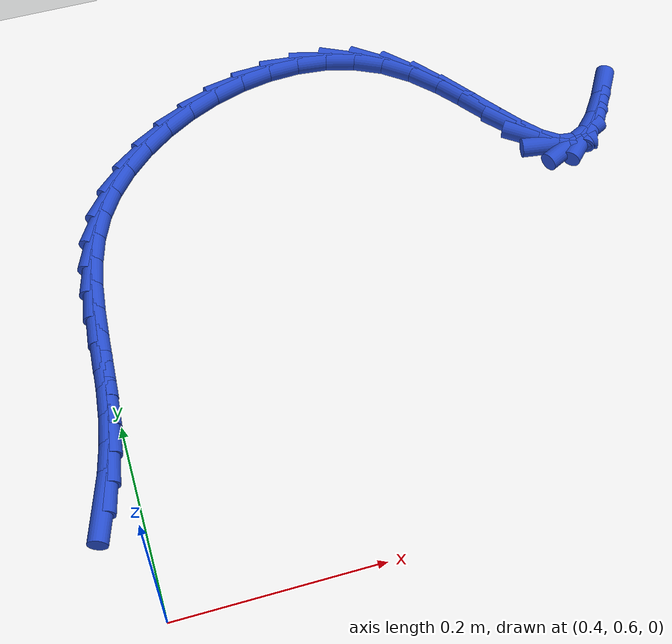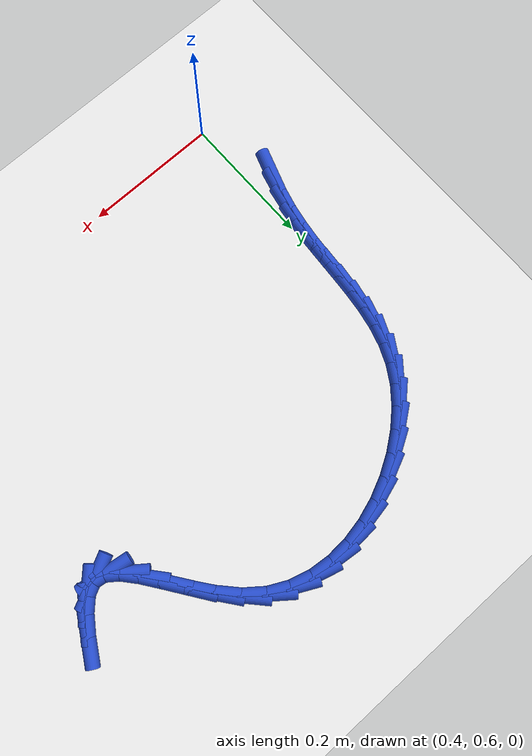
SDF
<sdf version="1.6">
 <world name="default">
  <model name="ground_plane">
   <static>1</static>
   <link name="link">
    <collision name="collision">
     <geometry><plane><normal>0 0 1</normal><size>100 100</size></plane></geometry>
     <surface><friction><ode><mu>100</mu><mu2>50</mu2></ode></friction></surface>
    </collision>
    <visual name="visual">
     <cast_shadows>0</cast_shadows>
     <geometry><plane><normal>0 0 1</normal><size>100 100</size></plane></geometry>
     <material>
      <script><uri>file://media/materials/scripts/gazebo.material</uri><name>Gazebo/WhiteGlow</name></script>
     </material>
    </visual>
   </link>
  </model>
  <model name="line">
   <link name="link_28">
    <pose>0.36902604573097597 0.7219168191069211 0.01 0 1.57 1.244764193914915</pose>
    <collision name="collision">
     <geometry><cylinder><radius>0.01</radius><length>0.08</length></cylinder></geometry>
    </collision>
    <visual name="visual">
     <material>
      <script><name>Gazebo/Blue</name><uri>file://media/materials/scripts/gazebo.material</uri></script>
     </material>
     <geometry><cylinder><radius>0.01</radius><length>0.08</length></cylinder></geometry>
    </visual>
   </link>
   <link name="link_29">
    <pose>0.3783888956829555 0.7496095726739407 0.01 0 1.57 1.3223368122751318</pose>
    <collision name="collision">
     <geometry><cylinder><radius>0.01</radius><length>0.08</length></cylinder></geometry>
    </collision>
    <visual name="visual">
     <material>
      <script><name>Gazebo/Blue</name><uri>file://media/materials/scripts/gazebo.material</uri></script>
     </material>
     <geometry><cylinder><radius>0.01</radius><length>0.08</length></cylinder></geometry>
    </visual>
   </link>
   <link name="link_30">
    <pose>0.38563838511574894 0.7781844349049406 0.01 0 1.57 1.3911572000497914</pose>
    <collision name="collision">
     <geometry><cylinder><radius>0.01</radius><length>0.08</length></cylinder></geometry>
    </collision>
    <visual name="visual">
     <material>
      <script><name>Gazebo/Blue</name><uri>file://media/materials/scripts/gazebo.material</uri></script>
     </material>
     <geometry><cylinder><radius>0.01</radius><length>0.08</length></cylinder></geometry>
    </visual>
   </link>
   <link name="link_31">
    <pose>0.3909557389757474 0.8074655449772111 0.01 0 1.57 1.4499399673393059</pose>
    <collision name="collision">
     <geometry><cylinder><radius>0.01</radius><length>0.08</length></cylinder></geometry>
    </collision>
    <visual name="visual">
     <material>
      <script><name>Gazebo/Blue</name><uri>file://media/materials/scripts/gazebo.material</uri></script>
     </material>
     <geometry><cylinder><radius>0.01</radius><length>0.08</length></cylinder></geometry>
    </visual>
   </link>
   <link name="link_32">
    <pose>0.3945729398656215 0.8372494345035162 0.01 0 1.57 1.4906707065102616</pose>
    <collision name="collision">
     <geometry><cylinder><radius>0.01</radius><length>0.08</length></cylinder></geometry>
    </collision>
    <visual name="visual">
     <material>
      <script><name>Gazebo/Blue</name><uri>file://media/materials/scripts/gazebo.material</uri></script>
     </material>
     <geometry><cylinder><radius>0.01</radius><length>0.08</length></cylinder></geometry>
    </visual>
   </link>
   <link name="link_33">
    <pose>0.396988040617587 0.8673263327755523 0.01 0 1.57 1.5049395389462195</pose>
    <collision name="collision">
     <geometry><cylinder><radius>0.01</radius><length>0.08</length></cylinder></geometry>
    </collision>
    <visual name="visual">
     <material>
      <script><name>Gazebo/Blue</name><uri>file://media/materials/scripts/gazebo.material</uri></script>
     </material>
     <geometry><cylinder><radius>0.01</radius><length>0.08</length></cylinder></geometry>
    </visual>
   </link>
   <link name="link_34">
    <pose>0.39897673311417453 0.8974798927369627 0.01 0 1.57 1.492624940425134</pose>
    <collision name="collision">
     <geometry><cylinder><radius>0.01</radius><length>0.08</length></cylinder></geometry>
    </collision>
    <visual name="visual">
     <material>
      <script><name>Gazebo/Blue</name><uri>file://media/materials/scripts/gazebo.material</uri></script>
     </material>
     <geometry><cylinder><radius>0.01</radius><length>0.08</length></cylinder></geometry>
    </visual>
   </link>
   <link name="link_35">
    <pose>0.40132772594029864 0.927493459008894 0.01 0 1.57 1.4532568165698665</pose>
    <collision name="collision">
     <geometry><cylinder><radius>0.01</radius><length>0.08</length></cylinder></geometry>
    </collision>
    <visual name="visual">
     <material>
      <script><name>Gazebo/Blue</name><uri>file://media/materials/scripts/gazebo.material</uri></script>
     </material>
     <geometry><cylinder><radius>0.01</radius><length>0.08</length></cylinder></geometry>
    </visual>
   </link>
   <link name="link_36">
    <pose>0.40482972768087394 0.9571503762124933 0.01 0 1.57 1.3858289965185158</pose>
    <collision name="collision">
     <geometry><cylinder><radius>0.01</radius><length>0.08</length></cylinder></geometry>
    </collision>
    <visual name="visual">
     <material>
      <script><name>Gazebo/Blue</name><uri>file://media/materials/scripts/gazebo.material</uri></script>
     </material>
     <geometry><cylinder><radius>0.01</radius><length>0.08</length></cylinder></geometry>
    </visual>
   </link>
   <link name="link_37">
    <pose>0.4102714469208147 0.9862339889689059 0.01 0 1.57 1.289680802735764</pose>
    <collision name="collision">
     <geometry><cylinder><radius>0.01</radius><length>0.08</length></cylinder></geometry>
    </collision>
    <visual name="visual">
     <material>
      <script><name>Gazebo/Blue</name><uri>file://media/materials/scripts/gazebo.material</uri></script>
     </material>
     <geometry><cylinder><radius>0.01</radius><length>0.08</length></cylinder></geometry>
    </visual>
   </link>
   <link name="link_38">
    <pose>0.4184415922450355 1.014527641899279 0.01 0 1.57 1.166126387622552</pose>
    <collision name="collision">
     <geometry><cylinder><radius>0.01</radius><length>0.08</length></cylinder></geometry>
    </collision>
    <visual name="visual">
     <material>
      <script><name>Gazebo/Blue</name><uri>file://media/materials/scripts/gazebo.material</uri></script>
     </material>
     <geometry><cylinder><radius>0.01</radius><length>0.08</length></cylinder></geometry>
    </visual>
   </link>
   <link name="link_39">
    <pose>0.43012887223845064 1.0418146796247583 0.01 0 1.57 1.021718159743225</pose>
    <collision name="collision">
     <geometry><cylinder><radius>0.01</radius><length>0.08</length></cylinder></geometry>
    </collision>
    <visual name="visual">
     <material>
      <script><name>Gazebo/Blue</name><uri>file://media/materials/scripts/gazebo.material</uri></script>
     </material>
     <geometry><cylinder><radius>0.01</radius><length>0.08</length></cylinder></geometry>
    </visual>
   </link>
   <link name="link_40">
    <pose>0.4460710485726541 1.0678709024240025 0.01 0 1.57 0.8816059710161478</pose>
    <collision name="collision">
     <geometry><cylinder><radius>0.01</radius><length>0.08</length></cylinder></geometry>
    </collision>
    <visual name="visual">
     <material>
      <script><name>Gazebo/Blue</name><uri>file://media/materials/scripts/gazebo.material</uri></script>
     </material>
     <geometry><cylinder><radius>0.01</radius><length>0.08</length></cylinder></geometry>
    </visual>
   </link>
   <link name="link_41">
    <pose>0.4662495672594686 1.0923601135184435 0.01 0 1.57 0.7569735497013308</pose>
    <collision name="collision">
     <geometry><cylinder><radius>0.01</radius><length>0.08</length></cylinder></geometry>
    </collision>
    <visual name="visual">
     <material>
      <script><name>Gazebo/Blue</name><uri>file://media/materials/scripts/gazebo.material</uri></script>
     </material>
     <geometry><cylinder><radius>0.01</radius><length>0.08</length></cylinder></geometry>
    </visual>
   </link>
   <link name="link_42">
    <pose>0.4900667150944571 1.114860352828109 0.01 0 1.57 0.6424183129022573</pose>
    <collision name="collision">
     <geometry><cylinder><radius>0.01</radius><length>0.08</length></cylinder></geometry>
    </collision>
    <visual name="visual">
     <material>
      <script><name>Gazebo/Blue</name><uri>file://media/materials/scripts/gazebo.material</uri></script>
     </material>
     <geometry><cylinder><radius>0.01</radius><length>0.08</length></cylinder></geometry>
    </visual>
   </link>
   <link name="link_43">
    <pose>0.5169100562298813 1.1349474801082984 0.01 0 1.57 0.5327345462630801</pose>
    <collision name="collision">
     <geometry><cylinder><radius>0.01</radius><length>0.08</length></cylinder></geometry>
    </collision>
    <visual name="visual">
     <material>
      <script><name>Gazebo/Blue</name><uri>file://media/materials/scripts/gazebo.material</uri></script>
     </material>
     <geometry><cylinder><radius>0.01</radius><length>0.08</length></cylinder></geometry>
    </visual>
   </link>
   <link name="link_44">
    <pose>0.5461671548180029 1.1521973551143123 0.01 0 1.57 0.4231803610204229</pose>
    <collision name="collision">
     <geometry><cylinder><radius>0.01</radius><length>0.08</length></cylinder></geometry>
    </collision>
    <visual name="visual">
     <material>
      <script><name>Gazebo/Blue</name><uri>file://media/materials/scripts/gazebo.material</uri></script>
     </material>
     <geometry><cylinder><radius>0.01</radius><length>0.08</length></cylinder></geometry>
    </visual>
   </link>
   <link name="link_45">
    <pose>0.5772255750110832 1.1661858376014507 0.01 0 1.57 0.30924750717978405</pose>
    <collision name="collision">
     <geometry><cylinder><radius>0.01</radius><length>0.08</length></cylinder></geometry>
    </collision>
    <visual name="visual">
     <material>
      <script><name>Gazebo/Blue</name><uri>file://media/materials/scripts/gazebo.material</uri></script>
     </material>
     <geometry><cylinder><radius>0.01</radius><length>0.08</length></cylinder></geometry>
    </visual>
   </link>
   <link name="link_46">
    <pose>0.6094728809613835 1.1764887873250123 0.01 0 1.57 0.18649029162062186</pose>
    <collision name="collision">
     <geometry><cylinder><radius>0.01</radius><length>0.08</length></cylinder></geometry>
    </collision>
    <visual name="visual">
     <material>
      <script><name>Gazebo/Blue</name><uri>file://media/materials/scripts/gazebo.material</uri></script>
     </material>
     <geometry><cylinder><radius>0.01</radius><length>0.08</length></cylinder></geometry>
    </visual>
   </link>
   <link name="link_47">
    <pose>0.6422966368211661 1.1826820640402986 0.01 0 1.57 0.050569120087990124</pose>
    <collision name="collision">
     <geometry><cylinder><radius>0.01</radius><length>0.08</length></cylinder></geometry>
    </collision>
    <visual name="visual">
     <material>
      <script><name>Gazebo/Blue</name><uri>file://media/materials/scripts/gazebo.material</uri></script>
     </material>
     <geometry><cylinder><radius>0.01</radius><length>0.08</length></cylinder></geometry>
    </visual>
   </link>
   <link name="link_48">
    <pose>0.6750844067426921 1.1843415275026088 0.01 0 1.57 -0.10227281391559402</pose>
    <collision name="collision">
     <geometry><cylinder><radius>0.01</radius><length>0.08</length></cylinder></geometry>
    </collision>
    <visual name="visual">
     <material>
      <script><name>Gazebo/Blue</name><uri>file://media/materials/scripts/gazebo.material</uri></script>
     </material>
     <geometry><cylinder><radius>0.01</radius><length>0.08</length></cylinder></geometry>
    </visual>
   </link>
   <link name="link_49">
    <pose>0.7072237548782232 1.1810430374672423 0.01 0 1.57 -0.2740476525816257</pose>
    <collision name="collision">
     <geometry><cylinder><radius>0.01</radius><length>0.08</length></cylinder></geometry>
    </collision>
    <visual name="visual">
     <material>
      <script><name>Gazebo/Blue</name><uri>file://media/materials/scripts/gazebo.material</uri></script>
     </material>
     <geometry><cylinder><radius>0.01</radius><length>0.08</length></cylinder></geometry>
    </visual>
   </link>
   <link name="link_50">
    <pose>0.7381022453800211 1.1723624536894999 0.01 0 1.57 -0.46321226137972576</pose>
    <collision name="collision">
     <geometry><cylinder><radius>0.01</radius><length>0.08</length></cylinder></geometry>
    </collision>
    <visual name="visual">
     <material>
      <script><name>Gazebo/Blue</name><uri>file://media/materials/scripts/gazebo.material</uri></script>
     </material>
     <geometry><cylinder><radius>0.01</radius><length>0.08</length></cylinder></geometry>
    </visual>
   </link>
   <link name="link_51">
    <pose>0.767107442400347 1.1578756359246811 0.01 0 1.57 -0.6604622022857236</pose>
    <collision name="collision">
     <geometry><cylinder><radius>0.01</radius><length>0.08</length></cylinder></geometry>
    </collision>
    <visual name="visual">
     <material>
      <script><name>Gazebo/Blue</name><uri>file://media/materials/scripts/gazebo.material</uri></script>
     </material>
     <geometry><cylinder><radius>0.01</radius><length>0.08</length></cylinder></geometry>
    </visual>
   </link>
   <link name="link_52">
    <pose>0.793657213112827 1.13725055849826 0.01 0 1.57 -0.8162864137049751</pose>
    <collision name="collision">
     <geometry><cylinder><radius>0.01</radius><length>0.08</length></cylinder></geometry>
    </collision>
    <visual name="visual">
     <material>
      <script><name>Gazebo/Blue</name><uri>file://media/materials/scripts/gazebo.material</uri></script>
     </material>
     <geometry><cylinder><radius>0.01</radius><length>0.08</length></cylinder></geometry>
    </visual>
   </link>
   <link name="link_53">
    <pose>0.8176772441910467 1.1116988561649102 0.01 0 1.57 -0.908229339026705</pose>
    <collision name="collision">
     <geometry><cylinder><radius>0.01</radius><length>0.08</length></cylinder></geometry>
    </collision>
    <visual name="visual">
     <material>
      <script><name>Gazebo/Blue</name><uri>file://media/materials/scripts/gazebo.material</uri></script>
     </material>
     <geometry><cylinder><radius>0.01</radius><length>0.08</length></cylinder></geometry>
    </visual>
   </link>
   <link name="link_54">
    <pose>0.839513976861812 1.0837111656756095 0.01 0 1.57 -0.9484617701473832</pose>
    <collision name="collision">
     <geometry><cylinder><radius>0.01</radius><length>0.08</length></cylinder></geometry>
    </collision>
    <visual name="visual">
     <material>
      <script><name>Gazebo/Blue</name><uri>file://media/materials/scripts/gazebo.material</uri></script>
     </material>
     <geometry><cylinder><radius>0.01</radius><length>0.08</length></cylinder></geometry>
    </visual>
   </link>
   <link name="link_55">
    <pose>0.8595265490714579 1.055816719037168 0.01 0 1.57 -0.9376675126594138</pose>
    <collision name="collision">
     <geometry><cylinder><radius>0.01</radius><length>0.08</length></cylinder></geometry>
    </collision>
    <visual name="visual">
     <material>
      <script><name>Gazebo/Blue</name><uri>file://media/materials/scripts/gazebo.material</uri></script>
     </material>
     <geometry><cylinder><radius>0.01</radius><length>0.08</length></cylinder></geometry>
    </visual>
   </link>
   <link name="link_56">
    <pose>0.8780740987663186 1.0305447482563952 0.01 0 1.57 -0.856589159546551</pose>
    <collision name="collision">
     <geometry><cylinder><radius>0.01</radius><length>0.08</length></cylinder></geometry>
    </collision>
    <visual name="visual">
     <material>
      <script><name>Gazebo/Blue</name><uri>file://media/materials/scripts/gazebo.material</uri></script>
     </material>
     <geometry><cylinder><radius>0.01</radius><length>0.08</length></cylinder></geometry>
    </visual>
   </link>
   <link name="link_57">
    <pose>0.8955157638927299 1.0104244853401017 0.01 0 1.57 -0.6403553867307327</pose>
    <collision name="collision">
     <geometry><cylinder><radius>0.01</radius><length>0.08</length></cylinder></geometry>
    </collision>
    <visual name="visual">
     <material>
      <script><name>Gazebo/Blue</name><uri>file://media/materials/scripts/gazebo.material</uri></script>
     </material>
     <geometry><cylinder><radius>0.01</radius><length>0.08</length></cylinder></geometry>
    </visual>
   </link>
   <link name="link_58">
    <pose>0.9122106823970259 0.997985162295097 0.01 0 1.57 -0.14150135525549745</pose>
    <collision name="collision">
     <geometry><cylinder><radius>0.01</radius><length>0.08</length></cylinder></geometry>
    </collision>
    <visual name="visual">
     <material>
      <script><name>Gazebo/Blue</name><uri>file://media/materials/scripts/gazebo.material</uri></script>
     </material>
     <geometry><cylinder><radius>0.01</radius><length>0.08</length></cylinder></geometry>
    </visual>
   </link>
   <link name="link_59">
    <pose>0.9285136425683247 0.9956627503383902 0.01 0 1.57 0.4659154382653027</pose>
    <collision name="collision">
     <geometry><cylinder><radius>0.01</radius><length>0.08</length></cylinder></geometry>
    </collision>
    <visual name="visual">
     <material>
      <script><name>Gazebo/Blue</name><uri>file://media/materials/scripts/gazebo.material</uri></script>
     </material>
     <geometry><cylinder><radius>0.01</radius><length>0.08</length></cylinder></geometry>
    </visual>
   </link>
   <link name="link_60">
    <pose>0.9446814576412832 1.0037925422877454 0.01 0 1.57 0.8050210756424779</pose>
    <collision name="collision">
     <geometry><cylinder><radius>0.01</radius><length>0.08</length></cylinder></geometry>
    </collision>
    <visual name="visual">
     <material>
      <script><name>Gazebo/Blue</name><uri>file://media/materials/scripts/gazebo.material</uri></script>
     </material>
     <geometry><cylinder><radius>0.01</radius><length>0.08</length></cylinder></geometry>
    </visual>
   </link>
   <link name="link_61">
    <pose>0.9608741005876147 1.0206334835716706 0.01 0 1.57 0.9666791874586514</pose>
    <collision name="collision">
     <geometry><cylinder><radius>0.01</radius><length>0.08</length></cylinder></geometry>
    </collision>
    <visual name="visual">
     <material>
      <script><name>Gazebo/Blue</name><uri>file://media/materials/scripts/gazebo.material</uri></script>
     </material>
     <geometry><cylinder><radius>0.01</radius><length>0.08</length></cylinder></geometry>
    </visual>
   </link>
   <link name="link_62">
    <pose>0.9772474216897759 1.0443561252379137 0.01 0 1.57 1.0446819030451595</pose>
    <collision name="collision">
     <geometry><cylinder><radius>0.01</radius><length>0.08</length></cylinder></geometry>
    </collision>
    <visual name="visual">
     <material>
      <script><name>Gazebo/Blue</name><uri>file://media/materials/scripts/gazebo.material</uri></script>
     </material>
     <geometry><cylinder><radius>0.01</radius><length>0.08</length></cylinder></geometry>
    </visual>
   </link>
  </model>
 </world>
</sdf>
